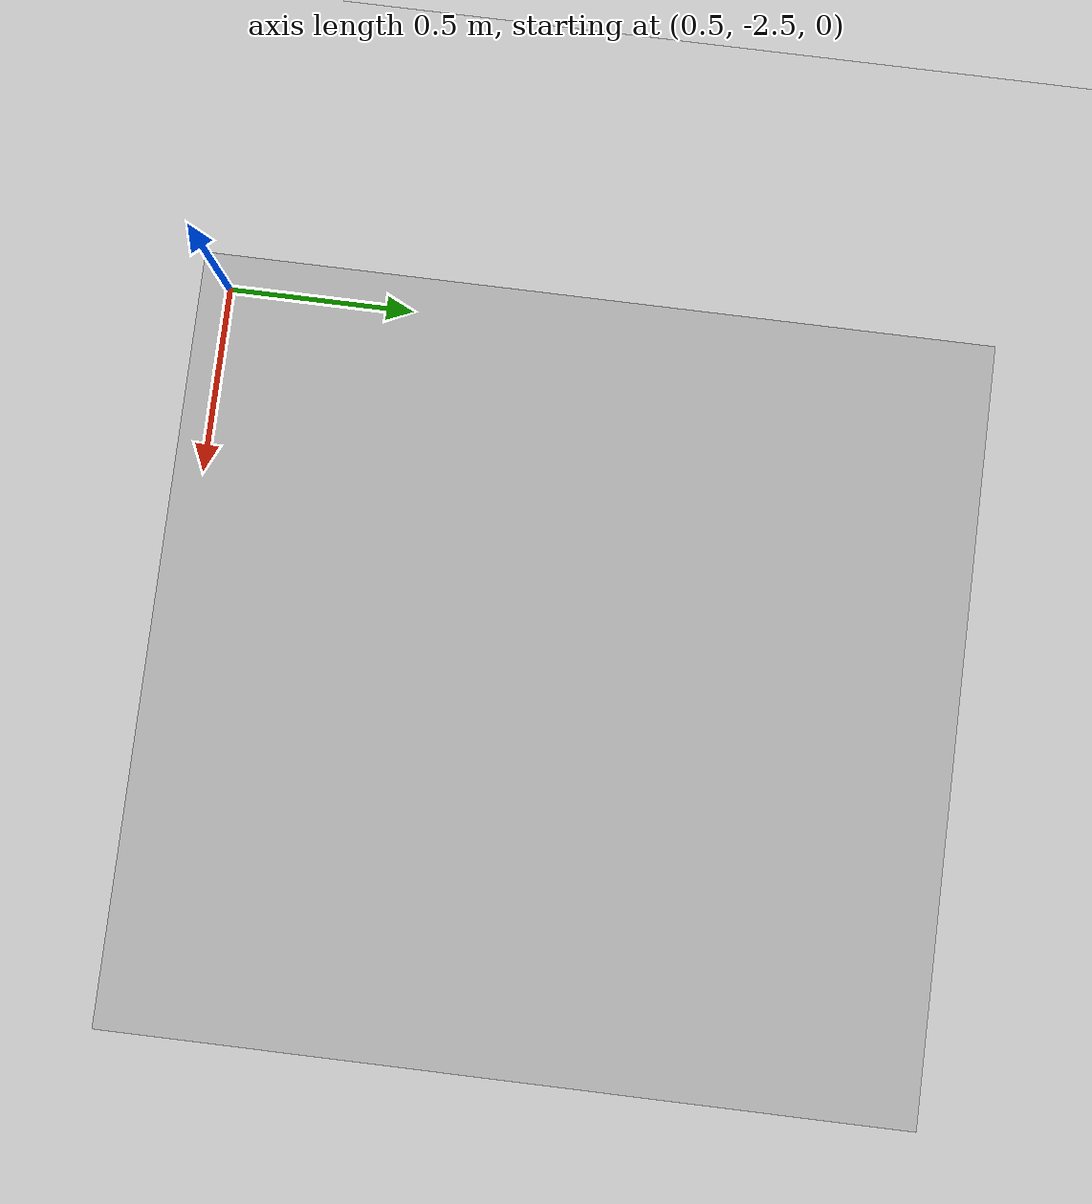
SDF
<?xml version="1.0" ?>
<sdf version="1.5">
  <world name="default">
    <!-- A global light source -->
    <include>
      <uri>model://sun</uri>
    </include>
    <!-- A ground plane -->
    <include>
      <uri>model://ground_plane</uri>
    </include>
    <include>
      <uri>model://table</uri>
      <pose>1.5 -1.5 0 0 0 0</pose>
    </include>
  </world>
</sdf>

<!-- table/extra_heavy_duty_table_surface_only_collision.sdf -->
<sdf version="1.7">
  <model name="extra_heavy_duty_table_surface_only_collision">
    <link name="table_link">
      <inertial>
        <mass>53.5</mass>
        <inertia>
          <ixx>5.177409</ixx>
          <ixy>0</ixy>
          <ixz>0</ixz>
          <iyy>4.843753753</iyy>
          <iyz>0</iyz>
          <izz>4.843753753</izz>
        </inertia>
      </inertial>
      <kinematic>0</kinematic>
      <visual name="back_right_leg">
        <pose>-0.33 -0.35 0.381 0 0 0</pose>
        <geometry>
          <box>
            <size>0.05 0.05 0.762</size>
          </box>
        </geometry>
        <material>
          <ambient>0.3 0.3 0.3 1</ambient>
          <diffuse>0.7 0.7 0.7 1</diffuse>
          <specular>0.01 0.01 0.01 1</specular>
          <emissive>0 0 0 1</emissive>
        </material>
      </visual>
      <visual name="front_left_leg">
        <pose>0.33 0.35 0.381 0 0 0</pose>
        <geometry>
          <box>
            <size>0.05 0.05 0.762</size>
          </box>
        </geometry>
        <material>
          <ambient>0.3 0.3 0.3 1</ambient>
          <diffuse>0.7 0.7 0.7 1</diffuse>
          <specular>0.01 0.01 0.01 1</specular>
          <emissive>0 0 0 1</emissive>
        </material>
      </visual>
      <visual name="left_crossbar">
        <pose>0.33 0 0.13335 0 0 0</pose>
        <geometry>
          <box>
            <size>0.05 0.662 0.05</size>
          </box>
        </geometry>
        <material>
          <ambient>0.3 0.3 0.3 1</ambient>
          <diffuse>0.7 0.7 0.7 1</diffuse>
          <specular>0.01 0.01 0.01 1</specular>
          <emissive>0 0 0 1</emissive>
        </material>
      </visual>
      <visual name="right_crossbar">
        <pose>-0.33 0 0.13335 0 0 0</pose>
        <geometry>
          <box>
            <size>0.05 0.662 0.05</size>
          </box>
        </geometry>
        <material>
          <ambient>0.3 0.3 0.3 1</ambient>
          <diffuse>0.7 0.7 0.7 1</diffuse>
          <specular>0.01 0.01 0.01 1</specular>
          <emissive>0 0 0 1</emissive>
        </material>
      </visual>
      <visual name="back_left_leg">
        <pose>-0.33 0.35 0.381 0 0 0</pose>
        <geometry>
          <box>
            <size>0.05 0.05 0.762</size>
          </box>
        </geometry>
        <material>
          <ambient>0.3 0.3 0.3 1</ambient>
          <diffuse>0.7 0.7 0.7 1</diffuse>
          <specular>0.01 0.01 0.01 1</specular>
          <emissive>0 0 0 1</emissive>
        </material>
      </visual>
      <visual name="front_right_leg">
        <pose>0.33 -0.35 0.381 0 0 0</pose>
        <geometry>
          <box>
            <size>0.05 0.05 0.762</size>
          </box>
        </geometry>
        <material>
          <ambient>0.3 0.3 0.3 1</ambient>
          <diffuse>0.7 0.7 0.7 1</diffuse>
          <specular>0.01 0.01 0.01 1</specular>
          <emissive>0 0 0 1</emissive>
        </material>
      </visual>
      <visual name="back_crossbar">
        <pose>0 0.35 0.13335 0 0 0</pose>
        <geometry>
          <box>
            <size>0.6112 0.05 0.05</size>
          </box>
        </geometry>
        <material>
          <ambient>0.3 0.3 0.3 1</ambient>
          <diffuse>0.7 0.7 0.7 1</diffuse>
          <specular>0.01 0.01 0.01 1</specular>
          <emissive>0 0 0 1</emissive>
        </material>
      </visual>
      <visual name="front_crossbar">
        <pose>0 -0.35 0.13335 0 0 0</pose>
        <geometry>
          <box>
            <size>0.6112 0.05 0.05</size>
          </box>
        </geometry>
        <material>
          <ambient>0.3 0.3 0.3 1</ambient>
          <diffuse>0.7 0.7 0.7 1</diffuse>
          <specular>0.01 0.01 0.01 1</specular>
          <emissive>0 0 0 1</emissive>
        </material>
      </visual>
      <visual name="visual1">
        <pose>0 0 0.736 0 0 0</pose>
        <geometry>
          <box>
            <size>1.7112 1.762 0.057</size>
          </box>
        </geometry>
        <material>
          <ambient>0.3 0.3 0.3 1</ambient>
          <diffuse>0.7 0.7 0.7 1</diffuse>
          <specular>0.01 0.01 0.01 1</specular>
          <emissive>0 0 0 1</emissive>
        </material>
      </visual>
      <collision name="surface">
        <laser_retro>0</laser_retro>
        <pose>0 0 0.736 0 0 0</pose>
        <geometry>
          <box>
            <size>1.7112 1.762 0.057</size>
          </box>
        </geometry>
        <drake:proximity_properties>
          <drake:rigid_hydroelastic/>
          <drake:mesh_resolution_hint value="1.5"/>
          <drake:hunt_crossley_dissipation value="1.25"/>
        </drake:proximity_properties>
        <surface>
          <friction>
            <ode>
              <mu>0.6</mu>
              <mu2>0.6</mu2>
              <fdir1>0 0 0</fdir1>
              <slip1>0</slip1>
              <slip2>0</slip2>
            </ode>
            <torsional>
              <coefficient>1</coefficient>
              <patch_radius>0</patch_radius>
              <surface_radius>0</surface_radius>
              <use_patch_radius>1</use_patch_radius>
              <ode>
                <slip>0</slip>
              </ode>
            </torsional>
          </friction>
          <bounce>
            <restitution_coefficient>0</restitution_coefficient>
            <threshold>1e+06</threshold>
          </bounce>
          <contact>
            <collide_without_contact>0</collide_without_contact>
            <collide_without_contact_bitmask>1</collide_without_contact_bitmask>
            <collide_bitmask>1</collide_bitmask>
            <ode>
              <soft_cfm>0</soft_cfm>
              <soft_erp>0.2</soft_erp>
              <kp>1e+13</kp>
              <kd>1</kd>
              <max_vel>0.01</max_vel>
              <min_depth>0</min_depth>
            </ode>
            <bullet>
              <split_impulse>1</split_impulse>
              <split_impulse_penetration_threshold>-0.01</split_impulse_penetration_threshold>
              <soft_cfm>0</soft_cfm>
              <soft_erp>0.2</soft_erp>
              <kp>1e+13</kp>
              <kd>1</kd>
            </bullet>
          </contact>
        </surface>
      </collision>
    </link>
    <frame name="table_top_center">
      <!--
      TODO(eric.cousineau): @frame='link' is redundant, but not having it
      causes RBT SDFormat parsing code to segfault. Remove this once RBT is
      removed.
      -->
      <pose relative_to="table_link">0 0 0.7645 0 0 0</pose>
    </frame>
  </model>
</sdf>
